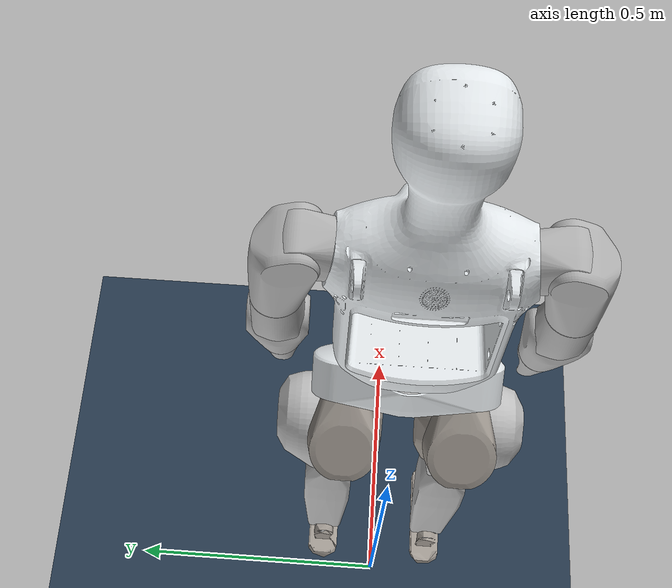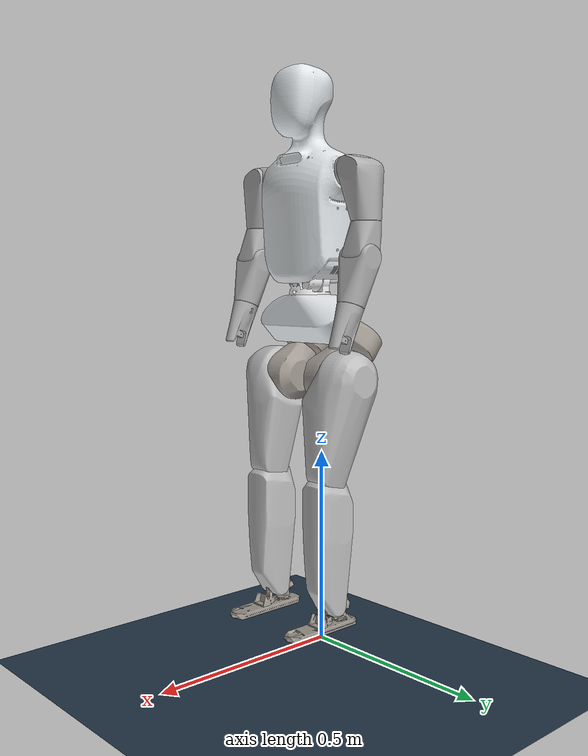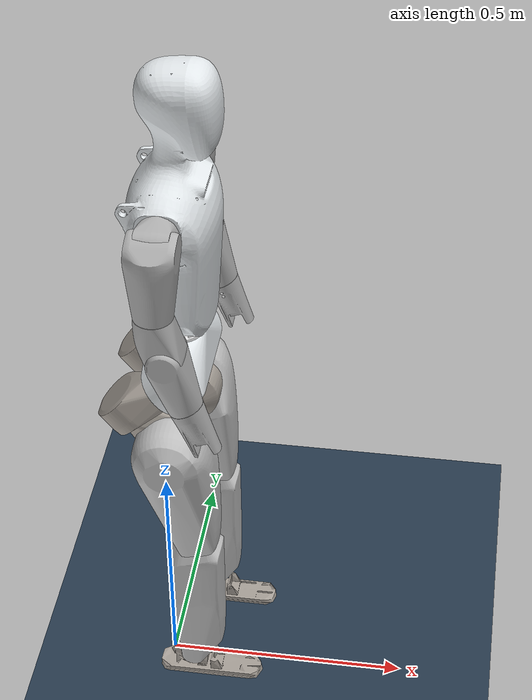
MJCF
<?xml version="1.0" encoding="utf-8"?>
<mujoco model="e1_24dof_from_urdf">
  <!-- Generated from e1_24dof.urdf; MuJoCo scene/actuator/sensor scaffold inherited from e1_24dof.xml. -->
  <compiler angle="radian" meshdir="../meshes/"/>

  <default>
    <joint damping="0.001" armature="0.03" frictionloss="0.1"/>
  </default>

  <asset>
    <texture type="skybox" builtin="gradient" rgb1="0.3 0.5 0.7" rgb2="0 0 0" width="512" height="512"/>
    <texture name="texplane" type="2d" builtin="checker" rgb1=".2 .3 .4" rgb2=".1 0.15 0.2" width="512" height="512" mark="cross" markrgb=".8 .8 .8"/>
    <material name="matplane" reflectance="0." texture="texplane" texrepeat="1 1" texuniform="true"/>
    <mesh name="base_link" file="base_link.STL"/>
    <mesh name="waist_yaw_link" file="waist_yaw_link.STL"/>
    <mesh name="waist_roll_link" file="waist_roll_link.STL"/>
    <mesh name="r_arm_shoulder_pitch_link" file="r_arm_shoulder_pitch_link.STL"/>
    <mesh name="r_arm_shoulder_roll_link" file="r_arm_shoulder_roll_link.STL"/>
    <mesh name="r_arm_shoulder_yaw_link" file="r_arm_shoulder_yaw_link.STL"/>
    <mesh name="r_arm_elbow_pitch_link" file="r_arm_elbow_pitch_link.STL"/>
    <mesh name="r_arm_elbow_yaw_link" file="r_arm_elbow_yaw_link.STL"/>
    <mesh name="l_arm_shoulder_pitch_link" file="l_arm_shoulder_pitch_link.STL"/>
    <mesh name="l_arm_shoulder_roll_link" file="l_arm_shoulder_roll_link.STL"/>
    <mesh name="l_arm_shoulder_yaw_link" file="l_arm_shoulder_yaw_link.STL"/>
    <mesh name="l_arm_elbow_pitch_link" file="l_arm_elbow_pitch_link.STL"/>
    <mesh name="l_arm_elbow_yaw_link" file="l_arm_elbow_yaw_link.STL"/>
    <mesh name="r_leg_hip_yaw_link" file="r_leg_hip_yaw_link.STL"/>
    <mesh name="r_leg_hip_roll_link" file="r_leg_hip_roll_link.STL"/>
    <mesh name="r_leg_hip_pitch_link" file="r_leg_hip_pitch_link.STL"/>
    <mesh name="r_leg_knee_link" file="r_leg_knee_link.STL"/>
    <mesh name="r_leg_ankle_pitch_link" file="r_leg_ankle_pitch_link.STL"/>
    <mesh name="r_leg_ankle_roll_link" file="r_leg_ankle_roll_link.STL"/>
    <mesh name="l_leg_hip_yaw_link" file="l_leg_hip_yaw_link.STL"/>
    <mesh name="l_leg_hip_roll_link" file="l_leg_hip_roll_link.STL"/>
    <mesh name="l_leg_hip_pitch_link" file="l_leg_hip_pitch_link.STL"/>
    <mesh name="l_leg_knee_link" file="l_leg_knee_link.STL"/>
    <mesh name="l_leg_ankle_pitch_link" file="l_leg_ankle_pitch_link.STL"/>
    <mesh name="l_leg_ankle_roll_link" file="l_leg_ankle_roll_link.STL"/>
  </asset>

  <worldbody>
    <light directional="true" diffuse=".4 .4 .4" specular="0.1 0.1 0.1" pos="0 0 5.0" dir="0 0 -1" castshadow="false"/>
    <light directional="true" diffuse=".6 .6 .6" specular="0.2 0.2 0.2" pos="0 0 4" dir="0 0 -1"/>
    <geom name="ground" type="plane" size="0 0 1" pos="0.001 0 0" quat="1 0 0 0" material="matplane" condim="1" conaffinity="15"/>
    <body name="base_link" pos="0 0 0.85">
      <inertial pos="0.046052 4.4711e-05 0.0021883" quat="0.2666084498 0.2670184832 0.6549303839 -0.6547421296" mass="3.6563" diaginertia="0.009486407928 0.007874694164 0.004343497907"/>
      <freejoint name="root"/>
      <site name="imu" size="0.01" pos="0 0 0"/>
      <geom name="base_link_visual" type="mesh" mesh="base_link" rgba="0.89804 0.91765 0.92941 1" contype="0" conaffinity="0" group="2"/>
      <geom type="box" size="0.05 0.125 0.05" name="base_link_collision" rgba="0.65098 0.61961 0.58824 0.35" group="3" pos="0.07 0 0"/>
      <body name="l_leg_hip_yaw_link" pos="0.054916 0.09 0.0038519" quat="0.9238581321 0 0.3827350935 0">
        <inertial pos="-0.017915 1.0596e-05 -0.10097" quat="0.001470730835 0.0002440947871 0.9999474505 0.01014266165" mass="1.4816" diaginertia="0.002470710276 0.0014031369 0.001312752825"/>
        <joint name="l_leg_hip_yaw_joint" type="hinge" pos="0 0 0" axis="0 0 1" limited="true" range="-0.7 0.92" actuatorfrcrange="-80 80"/>
        <geom name="l_leg_hip_yaw_link_visual" type="mesh" mesh="l_leg_hip_yaw_link" rgba="0.64706 0.61961 0.58824 1" contype="0" conaffinity="0" group="2"/>
        <geom type="cylinder" size="0.05 0.005" name="l_leg_hip_yaw_link_collision" rgba="0.65098 0.61961 0.58824 0.35" group="3" pos="-0.02 0 -0.12" quat="0.70724689 0 0.7069666446 0"/>
        <body name="l_leg_hip_roll_link" pos="0 0 -0.1185">
          <inertial pos="0.085701 -0.016584 -7.9104e-05" quat="0.5025666158 -0.4945694472 -0.4983787554 0.5044268775" mass="1.9235" diaginertia="0.003896470692 0.002380892982 0.001878736326"/>
          <joint name="l_leg_hip_roll_joint" type="hinge" pos="0 0 0" axis="1 0 0" limited="true" range="-0.7 0.61" actuatorfrcrange="-80 80"/>
          <geom name="l_leg_hip_roll_link_visual" type="mesh" mesh="l_leg_hip_roll_link" rgba="0.64706 0.61961 0.58824 1" contype="0" conaffinity="0" group="2"/>
          <body name="l_leg_hip_pitch_link" pos="0.101 0 0" quat="0.9238581321 0 -0.3827350935 0">
            <inertial pos="0.014299 0.041463 -0.052859" quat="0.6957898255 0.06246971919 -0.08880267355 -0.7099916465" mass="4.147" diaginertia="0.02172305493 0.01797879489 0.004709950182"/>
            <joint name="l_leg_hip_pitch_joint" type="hinge" pos="0 0 0" axis="0 1 0" limited="true" range="-1.48 0.87" actuatorfrcrange="-120 120"/>
            <geom name="l_leg_hip_pitch_link_visual" type="mesh" mesh="l_leg_hip_pitch_link" rgba="0.75294 0.75294 0.75294 1" contype="0" conaffinity="0" group="2"/>
            <geom type="cylinder" size="0.06 0.035" name="l_leg_hip_pitch_link_collision" rgba="0.65098 0.61961 0.58824 0.35" group="3" pos="0.03 0.02 0.02" quat="0.7071054825 0.7071080799 0 0"/>
            <geom type="cylinder" size="0.07 0.035" name="l_leg_hip_pitch_link_collision_1" rgba="0.65098 0.61961 0.58824 0.35" group="3" pos="0.025 0.015 -0.155"/>
            <body name="l_leg_knee_link" pos="0.022251 0 -0.25403" quat="0.9999999999 -1.4883e-05 0 0">
              <inertial pos="0.013831 0.017997 -0.12305" quat="0.01345237003 -0.705052302 -0.7089400793 0.01114671037" mass="3.6766" diaginertia="0.01808119228 0.01720187207 0.001589735656"/>
              <joint name="l_leg_knee_joint" type="hinge" pos="0 0 0" axis="0 1 0" limited="true" range="0 2.36" actuatorfrcrange="-120 120"/>
              <geom name="l_leg_knee_link_visual" type="mesh" mesh="l_leg_knee_link" rgba="0.75294 0.75294 0.75294 1" contype="0" conaffinity="0" group="2"/>
              <geom type="cylinder" size="0.06 0.1" name="l_leg_knee_link_collision" rgba="0.65098 0.61961 0.58824 0.35" group="3" pos="0.01 0.015 -0.17"/>
              <body name="l_leg_ankle_pitch_link" pos="3.9185e-05 0.018243 -0.315">
                <inertial pos="-0.0088522 -0.00030887 -6.821e-07" quat="0.5067246691 -0.5068000079 -0.4931777362 0.4931121396" mass="0.18171" diaginertia="4.452775263e-05 3.710100027e-05 2.328624709e-05"/>
                <joint name="l_leg_ankle_pitch_joint" type="hinge" pos="0 0 0" axis="0 1 0" limited="true" range="-1.01 0.42" actuatorfrcrange="-100 100"/>
                <geom name="l_leg_ankle_pitch_link_visual" type="mesh" mesh="l_leg_ankle_pitch_link" rgba="0.75294 0.75294 0.75294 1" contype="0" conaffinity="0" group="2"/>
                <body name="l_leg_ankle_roll_link" quat="0.9999999987 0 -5.103499998e-05 0">
                  <inertial pos="0.021092 -7.0109e-05 -0.03295" quat="0.7095308679 -0.001028525567 -0.7046732746 -0.0006823953471" mass="0.56573" diaginertia="0.001073341417 0.001019004813 0.0001958537703"/>
                  <joint name="l_leg_ankle_roll_joint" type="hinge" pos="0 0 0" axis="1 0 0" limited="true" range="-0.26 0.26" actuatorfrcrange="-100 100"/>
                  <geom name="l_leg_ankle_roll_link_visual" type="mesh" mesh="l_leg_ankle_roll_link" rgba="0.64706 0.61961 0.58824 1" contype="0" conaffinity="0" group="2"/>
                  <geom type="box" size="0.1075 0.03 0.013" name="l_leg_ankle_roll_link_collision" rgba="0.65098 0.61961 0.58824 0.35" group="3" pos="0.036 -0.0005 -0.048"/>
                </body>
              </body>
            </body>
          </body>
        </body>
      </body>
      <body name="r_leg_hip_yaw_link" pos="0.054916 -0.09 0.0038519" quat="0.9238581321 0 0.3827350935 0">
        <inertial pos="-0.017915 -1.0598e-05 -0.10263" quat="0.000233281465 0.002383041996 -0.01014605954 -0.9999456606" mass="1.4816" diaginertia="0.00247072654 0.001403136933 0.001312736526"/>
        <joint name="r_leg_hip_yaw_joint" type="hinge" pos="0 0 0" axis="0 0 1" limited="true" range="-0.92 0.7" actuatorfrcrange="-80 80"/>
        <geom name="r_leg_hip_yaw_link_visual" type="mesh" mesh="r_leg_hip_yaw_link" rgba="0.64706 0.61961 0.58824 1" contype="0" conaffinity="0" group="2"/>
        <geom type="cylinder" size="0.05 0.005" name="r_leg_hip_yaw_link_collision" rgba="0.65098 0.61961 0.58824 0.35" group="3" pos="-0.02 0 -0.12" quat="0.70724689 0 0.7069666446 0"/>
        <body name="r_leg_hip_roll_link" pos="0 0 -0.1185">
          <inertial pos="0.086978 0.016584 -7.9149e-05" quat="0.503352924 0.493504778 -0.4975657201 -0.5054871138" mass="1.9235" diaginertia="0.003896483174 0.002380952528 0.001878664298"/>
          <joint name="r_leg_hip_roll_joint" type="hinge" pos="0 0 0" axis="1 0 0" limited="true" range="-0.61 0.7" actuatorfrcrange="-80 80"/>
          <geom name="r_leg_hip_roll_link_visual" type="mesh" mesh="r_leg_hip_roll_link" rgba="0.64706 0.61961 0.58824 1" contype="0" conaffinity="0" group="2"/>
          <body name="r_leg_hip_pitch_link" pos="0.101 0 0" quat="0.9238581321 0 -0.3827350935 0">
            <inertial pos="0.014292 -0.041458 -0.052861" quat="0.7100165477 0.08883253694 -0.0625050778 -0.6957574273" mass="4.1464" diaginertia="0.02172006311 0.0179761976 0.004709239291"/>
            <joint name="r_leg_hip_pitch_joint" type="hinge" pos="0 0 0" axis="0 1 0" limited="true" range="-1.48 0.87" actuatorfrcrange="-120 120"/>
            <geom name="r_leg_hip_pitch_link_visual" type="mesh" mesh="r_leg_hip_pitch_link" rgba="0.75294 0.75294 0.75294 1" contype="0" conaffinity="0" group="2"/>
            <geom type="cylinder" size="0.06 0.035" name="r_leg_hip_pitch_link_collision" rgba="0.65098 0.61961 0.58824 0.35" group="3" pos="0.03 -0.02 0.02" quat="0.7071054825 0.7071080799 0 0"/>
            <geom type="cylinder" size="0.07 0.035" name="r_leg_hip_pitch_link_collision_1" rgba="0.65098 0.61961 0.58824 0.35" group="3" pos="0.025 -0.015 -0.155"/>
            <body name="r_leg_knee_link" pos="0.022251 0 -0.25403" quat="0.9999999999 1.4883e-05 0 0">
              <inertial pos="0.013832 -0.017558 -0.12305" quat="0.01115521477 -0.7088773006 -0.7051151872 0.01345758634" mass="3.6767" diaginertia="0.01808219041 0.01720289564 0.001589813949"/>
              <joint name="r_leg_knee_joint" type="hinge" pos="0 0 0" axis="0 1 0" limited="true" range="0 2.36" actuatorfrcrange="-120 120"/>
              <geom name="r_leg_knee_link_visual" type="mesh" mesh="r_leg_knee_link" rgba="0.75294 0.75294 0.75294 1" contype="0" conaffinity="0" group="2"/>
              <geom type="cylinder" size="0.06 0.1" name="r_leg_knee_link_collision" rgba="0.65098 0.61961 0.58824 0.35" group="3" pos="0.01 -0.015 -0.17"/>
              <body name="r_leg_ankle_pitch_link" pos="3.9185e-05 -0.018242 -0.315">
                <inertial pos="-0.0088522 0.00030863 -2.4947e-07" quat="0.4931547382 -0.4931384749 -0.50674859 0.5067728438" mass="0.18171" diaginertia="4.452774501e-05 3.710100002e-05 2.328625497e-05"/>
                <joint name="r_leg_ankle_pitch_joint" type="hinge" pos="0 0 0" axis="0 1 0" limited="true" range="-1.01 0.42" actuatorfrcrange="-100 100"/>
                <geom name="r_leg_ankle_pitch_link_visual" type="mesh" mesh="r_leg_ankle_pitch_link" rgba="0.75294 0.75294 0.75294 1" contype="0" conaffinity="0" group="2"/>
                <body name="r_leg_ankle_roll_link">
                  <inertial pos="0.021092 6.9792e-05 -0.03295" quat="0.000682638774 0.7046732752 0.001028112883 -0.7095308677" mass="0.56573" diaginertia="0.001073341416 0.001019004812 0.0001958537712"/>
                  <joint name="r_leg_ankle_roll_joint" type="hinge" pos="0 0 0" axis="1 0 0" limited="true" range="-0.26 0.26" actuatorfrcrange="-60 60"/>
                  <geom name="r_leg_ankle_roll_link_visual" type="mesh" mesh="r_leg_ankle_roll_link" rgba="0.64706 0.61961 0.58824 1" contype="0" conaffinity="0" group="2"/>
                  <geom type="box" size="0.1075 0.03 0.013" name="r_leg_ankle_roll_link_collision" rgba="0.65098 0.61961 0.58824 0.35" group="3" pos="0.036 0.0005 -0.048"/>
                </body>
              </body>
            </body>
          </body>
        </body>
      </body>
      <body name="waist_yaw_link" pos="0.041941 0 0.064775">
        <inertial pos="-0.0039794 2.0146e-05 0.019034" quat="0.005466819825 0.5868009085 -0.0001670866857 -0.809712776" mass="0.84518" diaginertia="0.0007058387383 0.0006183476726 0.0004902635891"/>
        <joint name="waist_yaw_joint" type="hinge" pos="0 0 0" axis="0 0 1" limited="true" range="-1.57 1.57" actuatorfrcrange="-70 70"/>
        <geom name="waist_yaw_link_visual" type="mesh" mesh="waist_yaw_link" rgba="1 1 1 1" contype="0" conaffinity="0" group="2"/>
        <body name="waist_roll_link" pos="0 0 0.0282">
          <inertial pos="-0.00055893 -9.001e-05 0.16997" quat="0.03069541287 0.001628301082 0.9994978975 -0.007687206677" mass="8.0324" diaginertia="0.06095583075 0.03940262465 0.0360935446"/>
          <joint name="waist_roll_joint" type="hinge" pos="0 0 0" axis="1 0 0" limited="true" range="-0.52 0.52" actuatorfrcrange="-70 70"/>
          <geom name="waist_roll_link_visual" type="mesh" mesh="waist_roll_link" rgba="0.89804 0.91765 0.92941 1" contype="0" conaffinity="0" group="2"/>
          <geom type="box" size="0.08 0.1 0.28" name="waist_roll_link_collision" rgba="0.65098 0.61961 0.58824 0.35" group="3" pos="0 0 0.27"/>
          <body name="l_arm_shoulder_pitch_link" pos="-0.00096786 0.10919 0.25375" quat="0.9961952613 0.08714930474 0 0">
            <inertial pos="0.0010157 0.051142 -2.0719e-05" quat="0.2738448773 0.2469936419 -0.6873844197 -0.6257042302" mass="0.65049" diaginertia="0.0003829635769 0.0003594354472 0.0003567009759"/>
            <joint name="l_arm_shoulder_pitch_joint" type="hinge" pos="0 0 0" axis="0 1 0" limited="true" range="-2.84 2.84" actuatorfrcrange="-20 20"/>
            <geom name="l_arm_shoulder_pitch_link_visual" type="mesh" mesh="l_arm_shoulder_pitch_link" rgba="0.69804 0.69804 0.69804 1" contype="0" conaffinity="0" group="2"/>
            <body name="l_arm_shoulder_roll_link" pos="0.00096786 0.058729 0" quat="0.9961952613 -0.08714930474 0 0">
              <inertial pos="-0.0003956 0.028602 -0.069119" quat="0.002297972985 0.002933507047 -0.994773801 -0.1020352818" mass="0.76829" diaginertia="0.001047020807 0.000884959326 0.0004433698667"/>
              <joint name="l_arm_shoulder_roll_joint" type="hinge" pos="0 0 0" axis="1 0 0" limited="true" range="0 2.36" actuatorfrcrange="-20 20"/>
              <geom name="l_arm_shoulder_roll_link_visual" type="mesh" mesh="l_arm_shoulder_roll_link" rgba="0.69804 0.69804 0.69804 1" contype="0" conaffinity="0" group="2"/>
              <geom type="cylinder" size="0.04 0.085" name="l_arm_shoulder_roll_link_collision" rgba="0.65098 0.61961 0.58824 0.35" group="3" pos="0 0.03 -0.08" quat="0.9987502604 0.04997916927 0 0"/>
              <body name="l_arm_shoulder_yaw_link" pos="-0.00099601 0.030407 -0.10688">
                <inertial pos="0.010623 0.0011472 -0.027097" quat="0.002239453725 0.002996052018 -0.9956994138 -0.0925671965" mass="0.76829" diaginertia="0.001047020054 0.000906083981 0.0004222159655"/>
                <joint name="l_arm_shoulder_yaw_joint" type="hinge" pos="0 0 0" axis="0 0 1" limited="true" range="-2.62 2.62" actuatorfrcrange="-20 20"/>
                <geom name="l_arm_shoulder_yaw_link_visual" type="mesh" mesh="l_arm_shoulder_yaw_link" rgba="0.69804 0.69804 0.69804 1" contype="0" conaffinity="0" group="2"/>
                <body name="l_arm_elbow_pitch_link" pos="0.020034 0.00026879 -0.10514" quat="0.9847969719 0 -0.1737093091 0">
                  <inertial pos="-0.0093147 6.2366e-05 -0.071674" quat="0.7084678412 -0.03949773666 0.03226580476 -0.7038978368" mass="0.69323" diaginertia="0.0007530888152 0.000660046875 0.0003433443099"/>
                  <joint name="l_arm_elbow_pitch_joint" type="hinge" pos="0 0 0" axis="0 1 0" limited="true" range="-1.92081 0.51919" actuatorfrcrange="-20 20"/>
                  <geom name="l_arm_elbow_pitch_link_visual" type="mesh" mesh="l_arm_elbow_pitch_link" rgba="0.69804 0.69804 0.69804 1" contype="0" conaffinity="0" group="2"/>
                  <geom type="cylinder" size="0.0275 0.085" name="l_arm_elbow_pitch_link_collision" rgba="0.65098 0.61961 0.58824 0.35" group="3" pos="-0.02 0.005 -0.12"/>
                  <body name="l_arm_elbow_yaw_link" pos="-0.0099866 -0.00047817 -0.11036">
                    <inertial pos="-0.00011941 -0.00074665 -0.050578" quat="0.00316285413 -0.7066716966 0.7075282611 0.002978140231" mass="0.57183" diaginertia="0.0003109530902 0.0002904499808 0.000137786929"/>
                    <joint name="l_arm_elbow_yaw_joint" type="hinge" pos="0 0 0" axis="0 0 1" limited="true" range="-1.57 1.57" actuatorfrcrange="-20 20"/>
                    <geom name="l_arm_elbow_yaw_link_visual" type="mesh" mesh="l_arm_elbow_yaw_link" rgba="0.69804 0.69804 0.69804 1" contype="0" conaffinity="0" group="2"/>
                  </body>
                </body>
              </body>
            </body>
          </body>
          <body name="r_arm_shoulder_pitch_link" pos="-0.00096779 -0.10919 0.25375" quat="0.9961952613 -0.08714930474 0 0">
            <inertial pos="0.0010142 -0.051145 -2.2863e-05" quat="0.2464343769 0.2737583404 0.6270364264 0.6864049745" mass="0.65037" diaginertia="0.0003829463868 0.00035938601 0.0003566676032"/>
            <joint name="r_arm_shoulder_pitch_joint" type="hinge" pos="0 0 0" axis="0 1 0" limited="true" range="-2.84 2.84" actuatorfrcrange="-20 20"/>
            <geom name="r_arm_shoulder_pitch_link_visual" type="mesh" mesh="r_arm_shoulder_pitch_link" rgba="0.69804 0.69804 0.69804 1" contype="0" conaffinity="0" group="2"/>
            <body name="r_arm_shoulder_roll_link" pos="0.00096779 -0.058729 0" quat="0.9961952613 0.08714930474 0 0">
              <inertial pos="-0.00039648 -0.028601 -0.069117" quat="0.002906951478 0.002325373068 0.1020323358 0.9947741174" mass="0.7683" diaginertia="0.001046921013 0.000884877852 0.0004433011352"/>
              <joint name="r_arm_shoulder_roll_joint" type="hinge" pos="0 0 0" axis="1 0 0" limited="true" range="-2.36 0" actuatorfrcrange="-20 20"/>
              <geom name="r_arm_shoulder_roll_link_visual" type="mesh" mesh="r_arm_shoulder_roll_link" rgba="0.69804 0.69804 0.69804 1" contype="0" conaffinity="0" group="2"/>
              <geom type="cylinder" size="0.04 0.085" name="r_arm_shoulder_roll_link_collision" rgba="0.65098 0.61961 0.58824 0.35" group="3" pos="0 -0.03 -0.08" quat="0.9987502604 -0.04997916927 0 0"/>
              <body name="r_arm_shoulder_yaw_link" pos="-0.00099601 -0.030407 -0.10688">
                <inertial pos="0.010623 -0.0011472 -0.027097" quat="0.002996052018 0.002239453725 0.0925671965 0.9956994138" mass="0.76829" diaginertia="0.001047020054 0.000906083981 0.0004222159655"/>
                <joint name="r_arm_shoulder_yaw_joint" type="hinge" pos="0 0 0" axis="0 0 1" limited="true" range="-2.62 2.62" actuatorfrcrange="-20 20"/>
                <geom name="r_arm_shoulder_yaw_link_visual" type="mesh" mesh="r_arm_shoulder_yaw_link" rgba="0.69804 0.69804 0.69804 1" contype="0" conaffinity="0" group="2"/>
                <body name="r_arm_elbow_pitch_link" pos="0.020034 -0.00026879 -0.10514" quat="0.9847969719 0 -0.1737093091 0">
                  <inertial pos="-0.0093153 -6.2064e-05 -0.071674" quat="0.03947846119 -0.7084177367 -0.7039497005 0.03225803034" mass="0.69324" diaginertia="0.0007530984549 0.0006600445132 0.0003433570319"/>
                  <joint name="r_arm_elbow_pitch_joint" type="hinge" pos="0 0 0" axis="0 1 0" limited="true" range="-1.92081 0.51919" actuatorfrcrange="-20 20"/>
                  <geom name="r_arm_elbow_pitch_link_visual" type="mesh" mesh="r_arm_elbow_pitch_link" rgba="0.69804 0.69804 0.69804 1" contype="0" conaffinity="0" group="2"/>
                  <geom type="cylinder" size="0.0275 0.085" name="r_arm_elbow_pitch_link_collision" rgba="0.65098 0.61961 0.58824 0.35" group="3" pos="-0.02 -0.005 -0.12"/>
                  <body name="r_arm_elbow_yaw_link" pos="-0.0099866 0.00047817 -0.11036">
                    <inertial pos="-0.00011793 0.000746 -0.050579" quat="0.7067077126 -0.00315367325 0.002958386045 0.7074924108" mass="0.57183" diaginertia="0.0003109729634 0.0002904199868 0.0001377970498"/>
                    <joint name="r_arm_elbow_yaw_joint" type="hinge" pos="0 0 0" axis="0 0 1" limited="true" range="-1.57 1.57" actuatorfrcrange="-20 20"/>
                    <geom name="r_arm_elbow_yaw_link_visual" type="mesh" mesh="r_arm_elbow_yaw_link" rgba="0.69804 0.69804 0.69804 1" contype="0" conaffinity="0" group="2"/>
                  </body>
                </body>
              </body>
            </body>
          </body>
        </body>
      </body>
    </body>
  </worldbody>

  <actuator>
    <motor name="l_leg_hip_yaw" joint="l_leg_hip_yaw_joint"/>
    <motor name="l_leg_hip_roll" joint="l_leg_hip_roll_joint"/>
    <motor name="l_leg_hip_pitch" joint="l_leg_hip_pitch_joint"/>
    <motor name="l_leg_knee" joint="l_leg_knee_joint"/>
    <motor name="l_leg_ankle_pitch" joint="l_leg_ankle_pitch_joint"/>
    <motor name="l_leg_ankle_roll" joint="l_leg_ankle_roll_joint"/>
    <motor name="r_leg_hip_yaw" joint="r_leg_hip_yaw_joint"/>
    <motor name="r_leg_hip_roll" joint="r_leg_hip_roll_joint"/>
    <motor name="r_leg_hip_pitch" joint="r_leg_hip_pitch_joint"/>
    <motor name="r_leg_knee" joint="r_leg_knee_joint"/>
    <motor name="r_leg_ankle_pitch" joint="r_leg_ankle_pitch_joint"/>
    <motor name="r_leg_ankle_roll" joint="r_leg_ankle_roll_joint"/>
    <motor name="waist_yaw" joint="waist_yaw_joint"/>
    <motor name="waist_roll" joint="waist_roll_joint"/>
    <motor name="l_arm_shoulder_pitch" joint="l_arm_shoulder_pitch_joint"/>
    <motor name="l_arm_shoulder_roll" joint="l_arm_shoulder_roll_joint"/>
    <motor name="l_arm_shoulder_yaw" joint="l_arm_shoulder_yaw_joint"/>
    <motor name="l_arm_elbow_pitch" joint="l_arm_elbow_pitch_joint"/>
    <motor name="l_arm_elbow_yaw" joint="l_arm_elbow_yaw_joint"/>
    <motor name="r_arm_shoulder_pitch" joint="r_arm_shoulder_pitch_joint"/>
    <motor name="r_arm_shoulder_roll" joint="r_arm_shoulder_roll_joint"/>
    <motor name="r_arm_shoulder_yaw" joint="r_arm_shoulder_yaw_joint"/>
    <motor name="r_arm_elbow_pitch" joint="r_arm_elbow_pitch_joint"/>
    <motor name="r_arm_elbow_yaw" joint="r_arm_elbow_yaw_joint"/>
  </actuator>

  <sensor>
    <framequat name="orientation" objtype="site" noise="0.001" objname="imu"/>
    <framepos name="position" objtype="site" noise="0.001" objname="imu"/>
    <gyro name="angular-velocity" site="imu" noise="0.005" cutoff="34.9"/>
    <velocimeter name="linear-velocity" site="imu" noise="0.001" cutoff="30"/>
  </sensor>
</mujoco>
